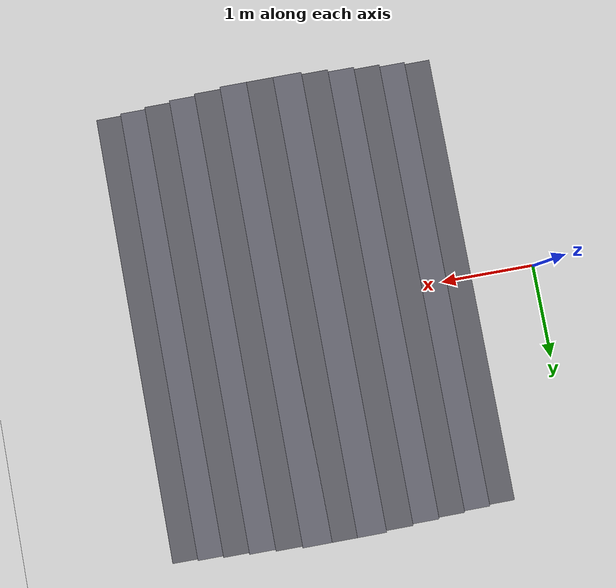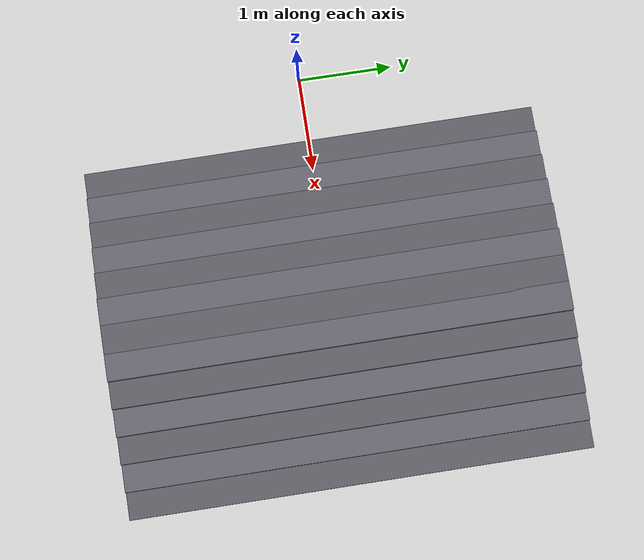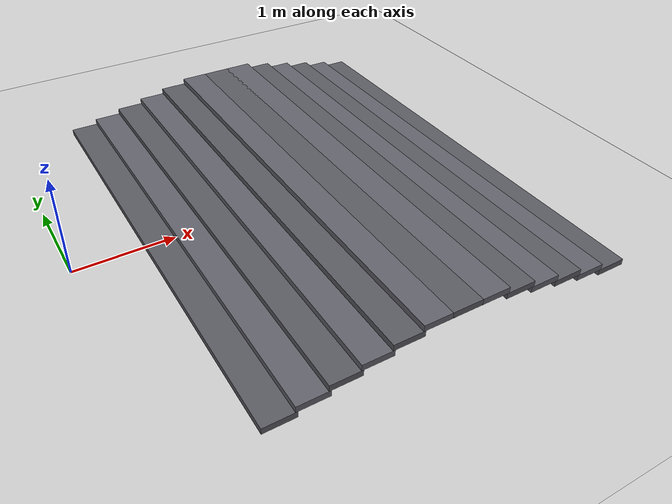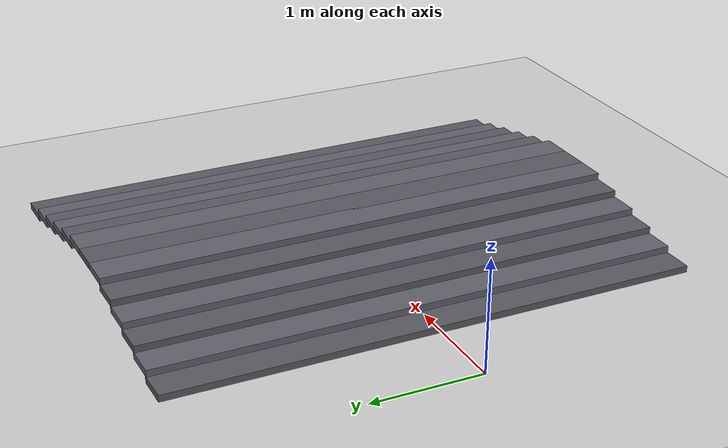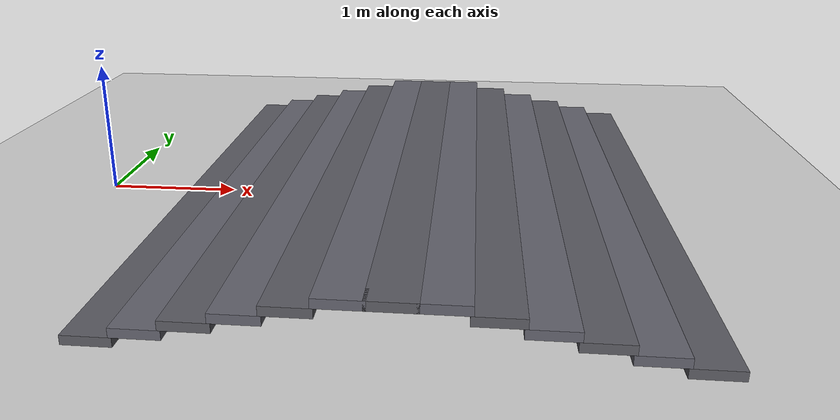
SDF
<?xml version="1.0" ?>
<sdf version="1.9">
  <world name="empty_world">
    <gravity>0 0 -9.8</gravity>
    <physics name="1ms" type="ode">
      <max_step_size>0.001</max_step_size>
      <real_time_update_rate>1000</real_time_update_rate>
      <real_time_factor>1.0</real_time_factor>
    </physics>
    <plugin
      filename="gz-sim-physics-system"
      name="gz::sim::systems::Physics">
    </plugin>
    <plugin
      filename="gz-sim-scene-broadcaster-system"
      name="gz::sim::systems::SceneBroadcaster">
    </plugin>
    <plugin
      filename="gz-sim-user-commands-system"
      name="gz::sim::systems::UserCommands">
    </plugin>
    <plugin
      filename="gz-sim-sensors-system"
      name="gz::sim::systems::Sensors">
      <render_engine>ogre2</render_engine>
    </plugin>
    <plugin filename="gz-sim-imu-system" name="gz::sim::systems::Imu">
      <topic>/imu</topic>
      <update_rate>400</update_rate>
    </plugin>
    <light type="directional" name="sun">
      <cast_shadows>true</cast_shadows>
      <pose>0 0 10 0 0 0</pose>
      <diffuse>0.8 0.8 0.8 1</diffuse>
      <specular>0.2 0.2 0.2 1</specular>
      <attenuation>
        <range>1000</range>
        <constant>0.9</constant>
        <linear>0.01</linear>
        <quadratic>0.001</quadratic>
      </attenuation>
      <direction>-0.5 0.1 -0.9</direction>
    </light>
    <model name="ground_plane">
      <static>true</static>
      <link name="link">
        <collision name="collision">
          <geometry>
            <box>
              <size>100 100 0.1</size>
            </box>
          </geometry>
          <pose>0 0 -0.05 0 0 0</pose>  <!-- sink it so top face is at z=0 -->
        </collision>
        <visual name="visual">
          <geometry>
            <plane>
              <normal>0 0 1</normal>
              <size>100 100</size>
            </plane>
          </geometry>
          <material>
            <ambient>0.8 0.8 0.8 1</ambient>
            <diffuse>0.8 0.8 0.8 1</diffuse>
          </material>
        </visual>
      </link>
    </model>
    <model name="stairs_up_down">
      <static>true</static>
      <pose>0 0 0 0 0 0</pose>
      <link name="stairs_link">
        <collision name="step_01_col">
          <pose>0.84 0 0.03 0 0 0</pose>
          <geometry><box><size>0.30 4.80 0.06</size></box></geometry>
        </collision>
        <collision name="step_02_col">
          <pose>1.12 0 0.09 0 0 0</pose>
          <geometry><box><size>0.30 4.80 0.06</size></box></geometry>
        </collision>
        <collision name="step_03_col">
          <pose>1.40 0 0.15 0 0 0</pose>
          <geometry><box><size>0.30 4.80 0.06</size></box></geometry>
        </collision>
        <collision name="step_04_col">
          <pose>1.68 0 0.21 0 0 0</pose>
          <geometry><box><size>0.30 4.80 0.06</size></box></geometry>
        </collision>
        <collision name="step_05_col">
          <pose>1.96 0 0.27 0 0 0</pose>
          <geometry><box><size>0.30 4.80 0.06</size></box></geometry>
        </collision>
        <collision name="step_06_col">
          <pose>2.24 0 0.33 0 0 0</pose>
          <geometry><box><size>0.30 4.80 0.06</size></box></geometry>
        </collision>
        <collision name="step_07_col">
          <pose>2.52 0 0.33 0 0 0</pose>
          <geometry><box><size>0.30 4.80 0.06</size></box></geometry>
        </collision>
        <collision name="step_08_col">
          <pose>2.80 0 0.33 0 0 0</pose>
          <geometry><box><size>0.30 4.80 0.06</size></box></geometry>
        </collision>
        <collision name="step_09_col">
          <pose>3.08 0 0.27 0 0 0</pose>
          <geometry><box><size>0.30 4.80 0.06</size></box></geometry>
        </collision>
        <collision name="step_10_col">
          <pose>3.36 0 0.21 0 0 0</pose>
          <geometry><box><size>0.30 4.80 0.06</size></box></geometry>
        </collision>
        <collision name="step_11_col">
          <pose>3.64 0 0.15 0 0 0</pose>
          <geometry><box><size>0.30 4.80 0.06</size></box></geometry>
        </collision>
        <collision name="step_12_col">
          <pose>3.92 0 0.09 0 0 0</pose>
          <geometry><box><size>0.30 4.80 0.06</size></box></geometry>
        </collision>
        <collision name="step_13_col">
          <pose>4.20 0 0.03 0 0 0</pose>
          <geometry><box><size>0.30 4.80 0.06</size></box></geometry>
        </collision>

        <visual name="step_01_vis">
          <pose>0.84 0 0.03 0 0 0</pose>
          <geometry><box><size>0.30 4.80 0.06</size></box></geometry>
          <material><ambient>0.35 0.35 0.38 1</ambient><diffuse>0.35 0.35 0.38 1</diffuse></material>
        </visual>
        <visual name="step_02_vis">
          <pose>1.12 0 0.09 0 0 0</pose>
          <geometry><box><size>0.30 4.80 0.06</size></box></geometry>
          <material><ambient>0.38 0.38 0.42 1</ambient><diffuse>0.38 0.38 0.42 1</diffuse></material>
        </visual>
        <visual name="step_03_vis">
          <pose>1.40 0 0.15 0 0 0</pose>
          <geometry><box><size>0.30 4.80 0.06</size></box></geometry>
          <material><ambient>0.35 0.35 0.38 1</ambient><diffuse>0.35 0.35 0.38 1</diffuse></material>
        </visual>
        <visual name="step_04_vis">
          <pose>1.68 0 0.21 0 0 0</pose>
          <geometry><box><size>0.30 4.80 0.06</size></box></geometry>
          <material><ambient>0.38 0.38 0.42 1</ambient><diffuse>0.38 0.38 0.42 1</diffuse></material>
        </visual>
        <visual name="step_05_vis">
          <pose>1.96 0 0.27 0 0 0</pose>
          <geometry><box><size>0.30 4.80 0.06</size></box></geometry>
          <material><ambient>0.35 0.35 0.38 1</ambient><diffuse>0.35 0.35 0.38 1</diffuse></material>
        </visual>
        <visual name="step_06_vis">
          <pose>2.24 0 0.33 0 0 0</pose>
          <geometry><box><size>0.30 4.80 0.06</size></box></geometry>
          <material><ambient>0.38 0.38 0.42 1</ambient><diffuse>0.38 0.38 0.42 1</diffuse></material>
        </visual>
        <visual name="step_07_vis">
          <pose>2.52 0 0.33 0 0 0</pose>
          <geometry><box><size>0.30 4.80 0.06</size></box></geometry>
          <material><ambient>0.35 0.35 0.38 1</ambient><diffuse>0.35 0.35 0.38 1</diffuse></material>
        </visual>
        <visual name="step_08_vis">
          <pose>2.80 0 0.33 0 0 0</pose>
          <geometry><box><size>0.30 4.80 0.06</size></box></geometry>
          <material><ambient>0.38 0.38 0.42 1</ambient><diffuse>0.38 0.38 0.42 1</diffuse></material>
        </visual>
        <visual name="step_09_vis">
          <pose>3.08 0 0.27 0 0 0</pose>
          <geometry><box><size>0.30 4.80 0.06</size></box></geometry>
          <material><ambient>0.35 0.35 0.38 1</ambient><diffuse>0.35 0.35 0.38 1</diffuse></material>
        </visual>
        <visual name="step_10_vis">
          <pose>3.36 0 0.21 0 0 0</pose>
          <geometry><box><size>0.30 4.80 0.06</size></box></geometry>
          <material><ambient>0.38 0.38 0.42 1</ambient><diffuse>0.38 0.38 0.42 1</diffuse></material>
        </visual>
        <visual name="step_11_vis">
          <pose>3.64 0 0.15 0 0 0</pose>
          <geometry><box><size>0.30 4.80 0.06</size></box></geometry>
          <material><ambient>0.35 0.35 0.38 1</ambient><diffuse>0.35 0.35 0.38 1</diffuse></material>
        </visual>
        <visual name="step_12_vis">
          <pose>3.92 0 0.09 0 0 0</pose>
          <geometry><box><size>0.30 4.80 0.06</size></box></geometry>
          <material><ambient>0.38 0.38 0.42 1</ambient><diffuse>0.38 0.38 0.42 1</diffuse></material>
        </visual>
        <visual name="step_13_vis">
          <pose>4.20 0 0.03 0 0 0</pose>
          <geometry><box><size>0.30 4.80 0.06</size></box></geometry>
          <material><ambient>0.35 0.35 0.38 1</ambient><diffuse>0.35 0.35 0.38 1</diffuse></material>
        </visual>
      </link>
    </model>
  </world>
</sdf>
